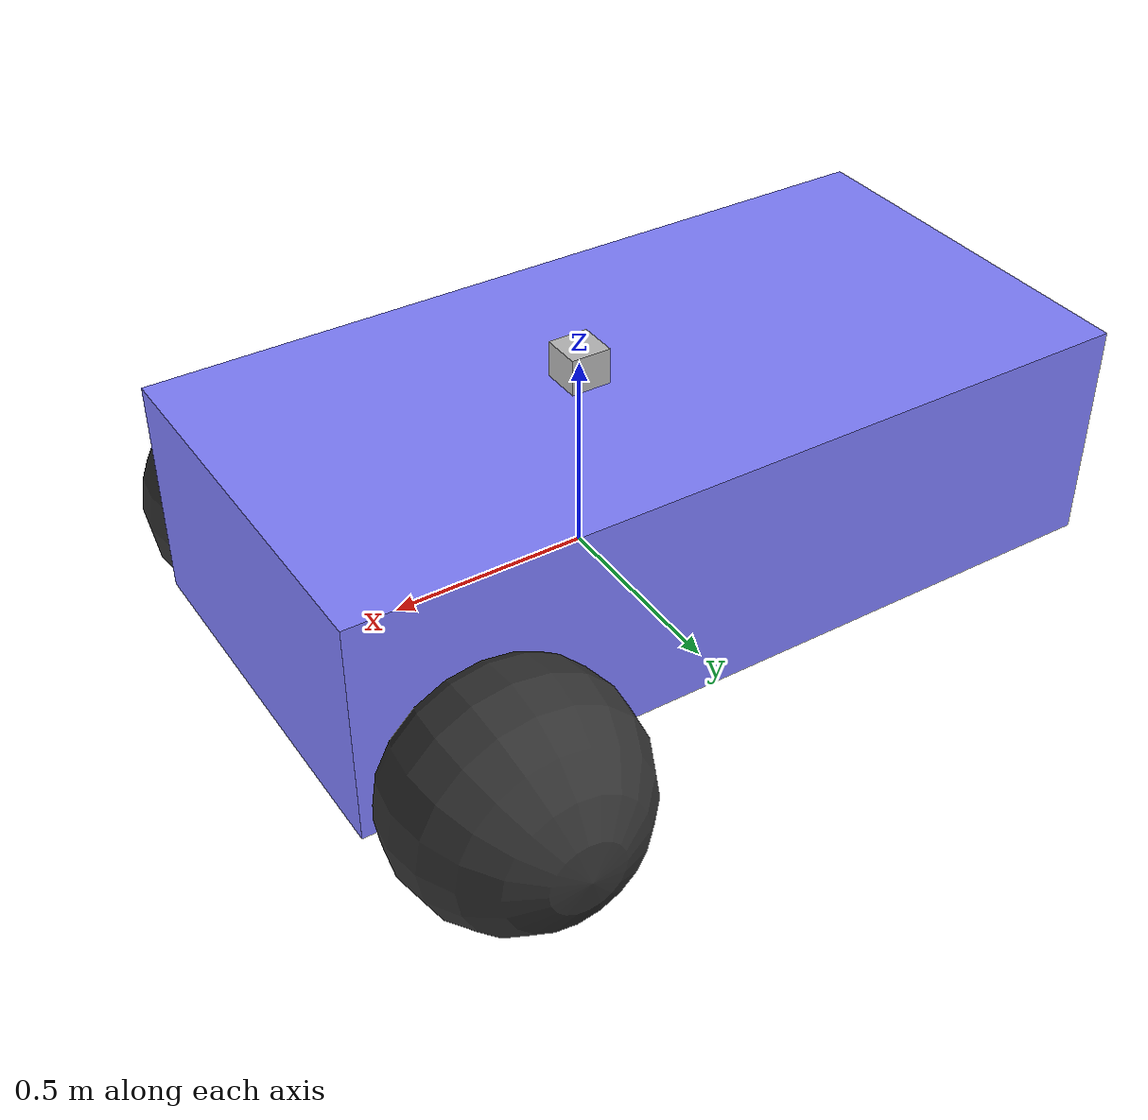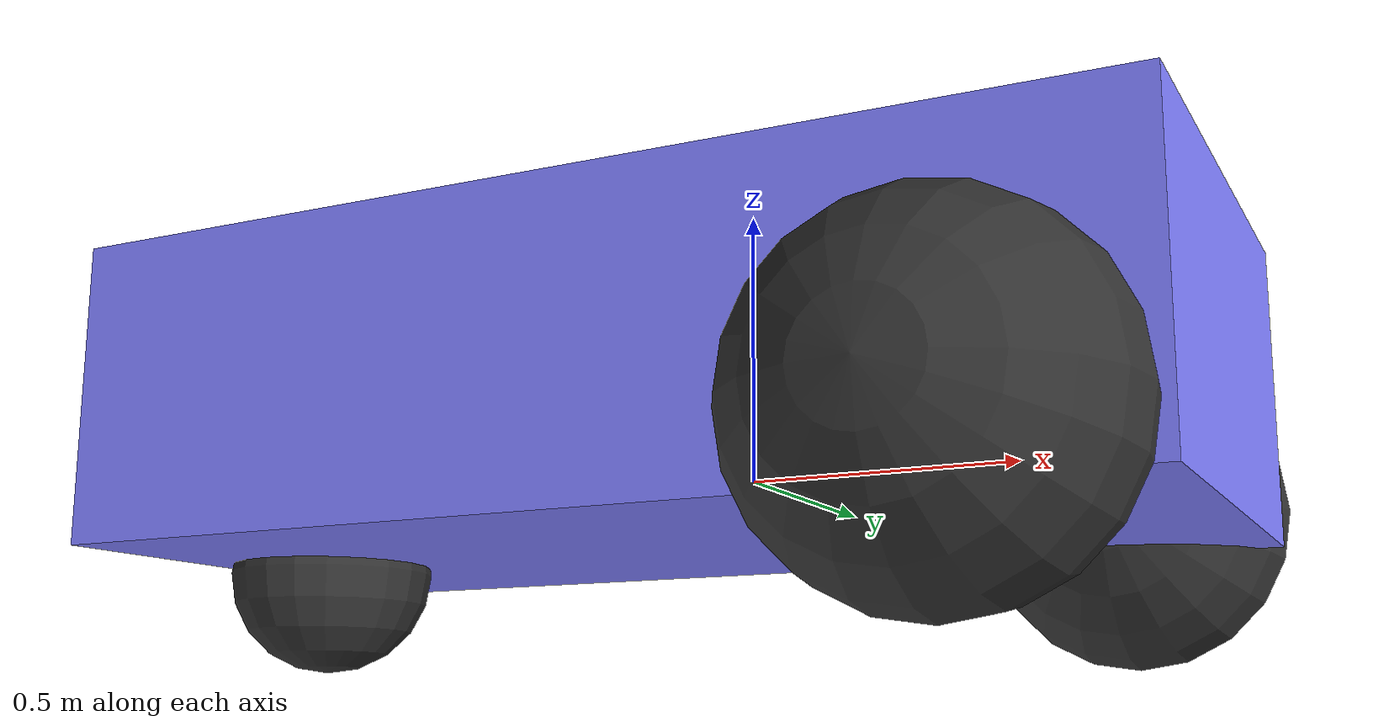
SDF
<?xml version="1.0" ?>
<sdf version="1.8">
    <model name='diff_drive'>
      <link name='chassis'>
        <pose>-0.151427 -0 0.175 0 -0 0</pose>
        <inertial>
          <mass>1.14395</mass>
          <inertia>
            <ixx>0.126164</ixx>
            <ixy>0</ixy>
            <ixz>0</ixz>
            <iyy>0.416519</iyy>
            <iyz>0</iyz>
            <izz>0.481014</izz>
          </inertia>
        </inertial>
        <visual name='visual_chassis'>
          <geometry>
            <box>
              <size>2.01142 1 0.568726</size>
            </box>
          </geometry>
          <material>
            <ambient>0.5 0.5 1.0 1</ambient>
            <diffuse>0.5 0.5 1.0 1</diffuse>
            <specular>0.0 0.0 1.0 1</specular>
          </material>
        </visual>
        <collision name='collision_chassis'>
          <geometry>
            <box>
              <size>2.01142 1 0.568726</size>
            </box>
          </geometry>
        </collision>
      </link>

      <link name='left_wheel'>
        <pose>0.554283 0.625029 -0.025 -1.5707 0 0</pose>
        <inertial>
          <mass>2</mass>
          <inertia>
            <ixx>0.145833</ixx>
            <ixy>0</ixy>
            <ixz>0</ixz>
            <iyy>0.145833</iyy>
            <iyz>0</iyz>
            <izz>0.125</izz>
          </inertia>
        </inertial>
        <visual name='visual_left_wheel'>
          <geometry>
            <sphere>
              <radius>0.3</radius>
            </sphere>
          </geometry>
          <material>
            <ambient>0.2 0.2 0.2 1</ambient>
            <diffuse>0.2 0.2 0.2 1</diffuse>
            <specular>0.2 0.2 0.2 1</specular>
          </material>
        </visual>
        <collision name='collision_left_wheel'>
          <geometry>
            <sphere>
              <radius>0.3</radius>
            </sphere>
          </geometry>
        </collision>
      </link>

      <link name='right_wheel'>
        <pose>0.554282 -0.625029 -0.025 -1.5707 0 0</pose>
        <inertial>
          <mass>2</mass>
          <inertia>
            <ixx>0.145833</ixx>
            <ixy>0</ixy>
            <ixz>0</ixz>
            <iyy>0.145833</iyy>
            <iyz>0</iyz>
            <izz>0.125</izz>
          </inertia>
        </inertial>
        <visual name='visual_right_wheel'>
          <geometry>
            <sphere>
              <radius>0.3</radius>
            </sphere>
          </geometry>
          <material>
            <ambient>0.2 0.2 0.2 1</ambient>
            <diffuse>0.2 0.2 0.2 1</diffuse>
            <specular>0.2 0.2 0.2 1</specular>
          </material>
        </visual>
        <collision name='collision_right_wheel'>
          <geometry>
            <sphere>
              <radius>0.3</radius>
            </sphere>
          </geometry>
        </collision>
      </link>

      <link name='caster'>
        <pose>-0.957138 -0 -0.125 0 -0 0</pose>
        <inertial>
          <mass>1</mass>
          <inertia>
            <ixx>0.1</ixx>
            <ixy>0</ixy>
            <ixz>0</ixz>
            <iyy>0.1</iyy>
            <iyz>0</iyz>
            <izz>0.1</izz>
          </inertia>
        </inertial>
        <visual name='visual_caster'>
          <geometry>
            <sphere>
              <radius>0.2</radius>
            </sphere>
          </geometry>
          <material>
            <ambient>0.2 0.2 0.2 1</ambient>
            <diffuse>0.2 0.2 0.2 1</diffuse>
            <specular>0.2 0.2 0.2 1</specular>
          </material>
        </visual>
        <collision name='collision_caster'>
          <geometry>
            <sphere>
              <radius>0.2</radius>
            </sphere>
          </geometry>
        </collision>
      </link>

      <link name="lidar_link">
        <pose>0 0 0.5 0 0 0</pose>
        <inertial>
          <mass>0.1</mass>
          <inertia>
            <ixx>0.000166667</ixx>
            <iyy>0.000166667</iyy>
            <izz>0.000166667</izz>
          </inertia>
        </inertial>
        <collision name="collision">
          <geometry>
            <box>
              <size>0.1 0.1 0.1</size>
            </box>
          </geometry>
        </collision>
        <visual name="visual">
          <geometry>
            <box>
              <size>0.1 0.1 0.1</size>
            </box>
          </geometry>
        </visual>
        <sensor name='gpu_lidar' type='gpu_lidar'>
          <pose>0 0 0 0 0 0</pose>
          <topic>scan</topic>
           <gz_frame_id>diff_drive/lidar_link</gz_frame_id>
           <frame_id>lidar_link</frame_id>
          <update_rate>10</update_rate>
          <lidar>
            <scan>
              <horizontal>
                <samples>640</samples>
                <resolution>1</resolution>
                <min_angle>-3.141593</min_angle>
                <max_angle>3.141593</max_angle>
              </horizontal>
              <vertical>
                <samples>1</samples>
                <resolution>1</resolution>
                <min_angle>0.0</min_angle>
                <max_angle>0.0</max_angle>
              </vertical>
            </scan>
            <range>
              <min>0.08</min>
              <max>10.0</max>
              <resolution>0.01</resolution>
            </range>
          </lidar>
          <visualize>true</visualize>
        </sensor>
      </link>

      <!-- Depth Camera Link -->
      <link name="depth_camera_link">
        <pose>0.8 0 0.3 0 0 0</pose>
        <inertial>
          <mass>0.05</mass>
          <inertia>
            <ixx>0.000083333</ixx>
            <iyy>0.000083333</iyy>
            <izz>0.000083333</izz>
          </inertia>
        </inertial>
        <collision name="depth_camera_collision">
          <geometry>
            <box>
              <size>0.05 0.15 0.05</size>
            </box>
          </geometry>
        </collision>
        <visual name="depth_camera_visual">
          <geometry>
            <box>
              <size>0.05 0.15 0.05</size>
            </box>
          </geometry>
          <material>
            <ambient>0.1 0.1 0.1 1</ambient>
            <diffuse>0.1 0.1 0.1 1</diffuse>
            <specular>0.1 0.1 0.1 1</specular>
          </material>
        </visual>

        <!-- RGB Camera Sensor -->
        <sensor name="rgb_camera" type="camera">
          <pose>0 0 0 0 0 0</pose>
          <topic>rgb/image_raw</topic>
          <gz_frame_id>diff_drive/depth_camera_link</gz_frame_id>
          <frame_id>depth_camera_link</frame_id>
          <update_rate>30</update_rate>
          <camera>
            <horizontal_fov>1.047198</horizontal_fov>
            <image>
              <width>640</width>
              <height>480</height>
              <format>R8G8B8</format>
            </image>
            <clip>
              <near>0.1</near>
              <far>10.0</far>
            </clip>
          </camera>
          <always_on>1</always_on>
          <visualize>true</visualize>
        </sensor>

        <!-- Depth Camera Sensor -->
        <sensor name="depth_camera" type="depth_camera">
          <pose>0 0 0 0 0 0</pose>
          <topic>depth/image_raw</topic>
          <gz_frame_id>diff_drive/depth_camera_link</gz_frame_id>
          <frame_id>depth_camera_link</frame_id>
          <update_rate>30</update_rate>
          <camera>
            <horizontal_fov>1.047198</horizontal_fov>
            <image>
              <width>640</width>
              <height>480</height>
              <format>R_FLOAT32</format>
            </image>
            <clip>
              <near>0.1</near>
              <far>10.0</far>
            </clip>
          </camera>
          <always_on>1</always_on>
          <visualize>false</visualize>
        </sensor>

        <!-- RGBD Camera Sensor (Combined RGB + Depth) -->
        <sensor name="rgbd_camera" type="rgbd_camera">
          <pose>0 0 0 0 0 0</pose>
          <topic>rgbd</topic>
          <gz_frame_id>diff_drive/depth_camera_link</gz_frame_id>
          <frame_id>depth_camera_link</frame_id>
          <update_rate>30</update_rate>
          <camera>
            <horizontal_fov>1.047198</horizontal_fov>
            <image>
              <width>640</width>
              <height>480</height>
              <format>R8G8B8</format>
            </image>
            <depth_image>
              <width>640</width>
              <height>480</height>
              <format>R_FLOAT32</format>
            </depth_image>
            <clip>
              <near>0.1</near>
              <far>10.0</far>
            </clip>
          </camera>
          <always_on>1</always_on>
          <visualize>false</visualize>
        </sensor>
      </link>

      <!-- Joints -->
      <joint name='lidar_joint' type='fixed'>
        <parent>chassis</parent>
        <child>lidar_link</child>
      </joint>

      <joint name='depth_camera_joint' type='fixed'>
        <parent>chassis</parent>
        <child>depth_camera_link</child>
      </joint>

      <joint name='left_wheel_joint' type='revolute'>
        <parent>chassis</parent>
        <child>left_wheel</child>
        <axis>
          <xyz>0 0 1</xyz>
          <limit>
            <lower>-1.79769e+308</lower>
            <upper>1.79769e+308</upper>
          </limit>
        </axis>
      </joint>

      <joint name='right_wheel_joint' type='revolute'>
        <parent>chassis</parent>
        <child>right_wheel</child>
        <axis>
          <xyz>0 0 1</xyz>
          <limit>
            <lower>-1.79769e+308</lower>
            <upper>1.79769e+308</upper>
          </limit>
        </axis>
      </joint>

      <joint name='caster_wheel' type='ball'>
        <parent>chassis</parent>
        <child>caster</child>
      </joint>

    <!-- REPLACE the existing plugin section at the bottom of your SDF with this corrected version -->

    <!-- 1. DiffDrive Plugin (keep as is - this one is correct) -->

<!-- 1. DiffDrive Plugin - FIXED -->

<plugin filename="libgz-sim-diff-drive-system.so" name="gz::sim::systems::DiffDrive">
    <left_joint>left_wheel_joint</left_joint>
    <right_joint>right_wheel_joint</right_joint>
    <wheel_separation>1.25</wheel_separation>  <!-- Distance between wheels -->
    <wheel_radius>0.3</wheel_radius>           <!-- Wheel radius -->
    <odom_publish_frequency>30</odom_publish_frequency>
    <topic>/model/diff_drive/cmd_vel</topic>   <!-- Matches your bridge -->
    <odom_topic>odometry</odom_topic>
</plugin>

<!-- 2. Joint State Publisher Plugin -->
<plugin filename="libgz-sim-joint-state-publisher-system.so" name="gz::sim::systems::JointStatePublisher">
    <joint_name>left_wheel_joint</joint_name>
    <joint_name>right_wheel_joint</joint_name>
    <joint_name>caster_wheel</joint_name>
</plugin>
<!-- 3. Pose Publisher Plugin - For TF -->
<plugin filename="gz-sim-pose-publisher-system" name="gz::sim::systems::PosePublisher">
    <publish_link_pose>true</publish_link_pose>
    <publish_collision_pose>false</publish_collision_pose>
    <publish_visual_pose>false</publish_visual_pose>
    <use_pose_vector_msg>true</use_pose_vector_msg>
    <static_publisher>true</static_publisher>
    <static_update_frequency>1</static_update_frequency>
</plugin>
    </model>
</sdf>
